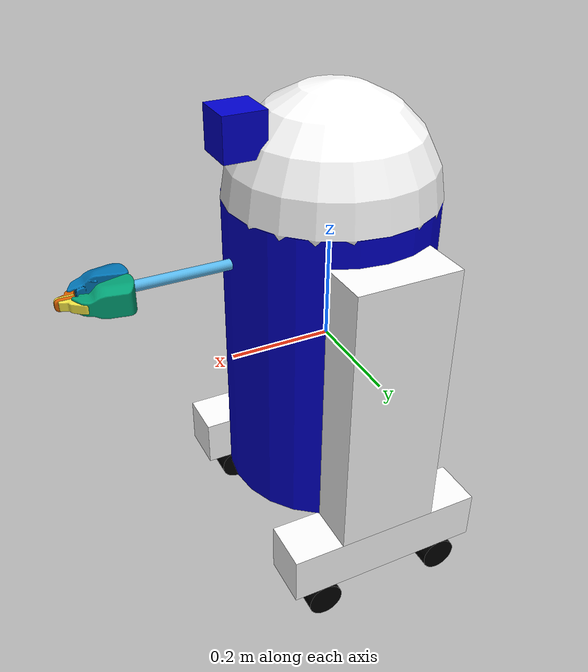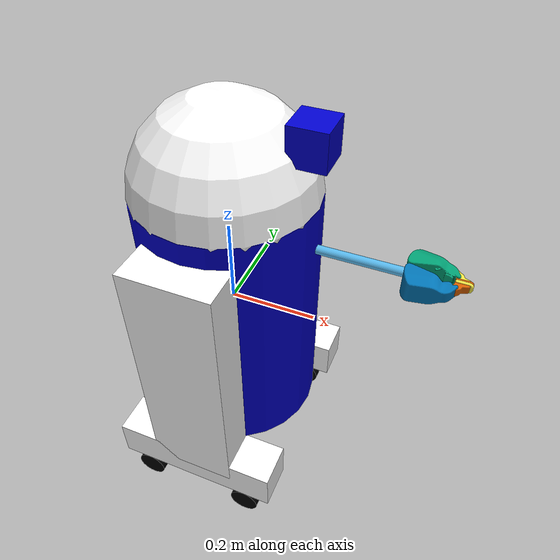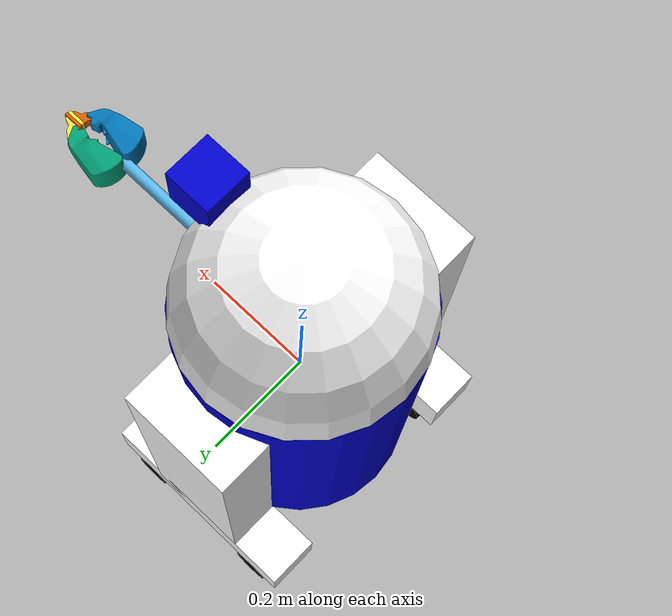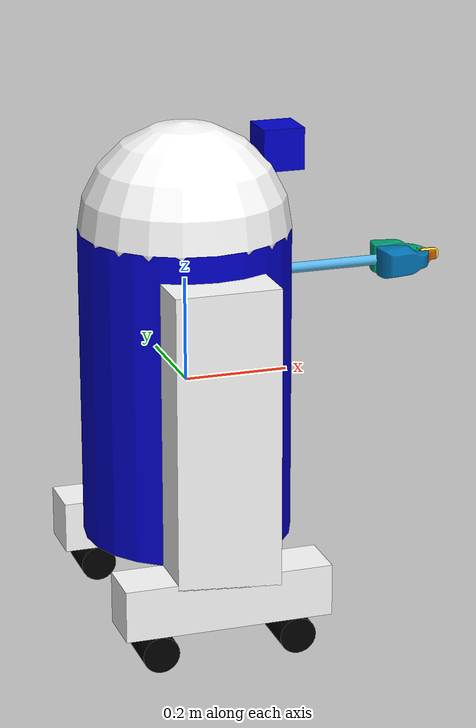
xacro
<?xml version="1.0"?>
<robot xmlns:xacro="http://www.ros.org/wiki/xacro" name="visual">

  <xacro:property name="width" value="0.2" />
  <xacro:property name="bodylen" value="0.6" />
  <xacro:property name="leglen" value="0.6" />
  <xacro:property name="wheeldiam" value="0.07" />

  <xacro:macro name="material" params="name color">
    <material name="${name}">
      <color rgba="${color}"/>
    </material>
  </xacro:macro>

  <xacro:material name="blue" color="0 0 0.8 1"/>
  <xacro:material name="black" color="0 0 0 1"/>
  <xacro:material name="white" color="1 1 1 1"/>

  <xacro:macro name="leg" params="prefix reflect">
    <link name="${prefix}_leg">
      <visual>
        <geometry>
          <box size="${leglen} 0.1 0.2"/>
        </geometry>
        <origin xyz="0 0 -${leglen/2}" rpy="0 ${pi/2} 0"/>
        <material name="white"/>
      </visual>
      <collision>
        <geometry>
          <box size="${leglen} 0.1 0.2"/>
        </geometry>
        <origin xyz="0 0 -${leglen/2}" rpy="0 ${pi/2} 0"/>
      </collision>
      <xacro:default_inertial mass="10"/>
    </link>

    <joint name="base_to_${prefix}_leg" type="fixed">
      <parent link="base_link"/>
      <child link="${prefix}_leg"/>
      <origin xyz="0 ${reflect*(width+.02)} 0.25" />
    </joint>

    <link name="${prefix}_base">
      <visual>
        <geometry>
          <box size="0.4 0.1 0.1"/>
        </geometry>
        <material name="white"/>
      </visual>
    </link>

    <joint name="${prefix}_base_joint" type="fixed">
      <parent link="${prefix}_leg"/>
      <child link="${prefix}_base"/>
      <origin xyz="0 0 -0.6"/>
    </joint>

    <link name="${prefix}_front_wheel">
      <visual>
        <origin rpy="1.57075 0 0" xyz="0 0 0"/>
        <geometry>
          <cylinder length="0.1" radius="${wheeldiam/2}"/>
        </geometry>
        <material name="black"/>
      </visual>
    </link>
    <joint name="${prefix}_front_wheel_joint" type="fixed">
      <parent link="${prefix}_base"/>
      <child link="${prefix}_front_wheel"/>
      <origin rpy="0 0 0" xyz="0.133333333333 0 -0.085"/>
    </joint>

    <link name="${prefix}_back_wheel">
      <visual>
        <origin rpy="1.57075 0 0" xyz="0 0 0"/>
        <geometry>
          <cylinder length="0.1" radius="${wheeldiam/2}"/>
        </geometry>
        <material name="black"/>
      </visual>
    </link>
    <joint name="${prefix}_back_wheel_joint" type="fixed">
      <parent link="${prefix}_base"/>
      <child link="${prefix}_back_wheel"/>
      <origin rpy="0 0 0" xyz="-0.133333333333 0 -0.085"/>
    </joint>
  </xacro:macro>

  <xacro:leg prefix="right" reflect="1" />
  <xacro:leg prefix="left" reflect="-1" />

  <link name="base_link">
    <visual>
      <geometry>
        <cylinder radius="${width}" length="${bodylen}"/>
      </geometry>
      <material name="blue"/>
    </visual>
    <collision>
      <geometry>
        <cylinder radius="${width}" length="${bodylen}"/>
      </geometry>
    </collision>
    <inertial>
      <mass value="10"/>
      <inertia ixx="1e-3" ixy="0.0" ixz="0.0" iyy="1e-3" iyz="0.0" izz="1e-3"/>
    </inertial>
  </link>

  <joint name="gripper_extension" type="prismatic">
    <parent link="base_link"/>
    <child link="gripper_pole"/>
    <limit effort="1000.0" lower="-0.38" upper="0" velocity="0.5"/>
    <origin rpy="0 0 0" xyz="0.19 0 0.2"/>
  </joint>

  <link name="gripper_pole">
    <visual>
      <geometry>
        <cylinder length="0.2" radius="0.01"/>
      </geometry>
      <origin rpy="0 1.57075 0 " xyz="0.1 0 0"/>
    </visual>
  </link>

  <joint name="left_gripper_joint" type="revolute">
    <axis xyz="0 0 1"/>
    <limit effort="1000.0" lower="0.0" upper="0.548" velocity="0.5"/>
    <origin rpy="0 0 0" xyz="0.2 0.01 0"/>
    <parent link="gripper_pole"/>
    <child link="left_gripper"/>
  </joint>

  <link name="left_gripper">
    <visual>
      <origin rpy="0.0 0 0" xyz="0 0 0"/>
      <geometry>
        <mesh filename="package://urdf_tutorial/meshes/l_finger.dae"/>
      </geometry>
    </visual>
  </link>

  <joint name="left_tip_joint" type="fixed">
    <parent link="left_gripper"/>
    <child link="left_tip"/>
  </joint>

  <link name="left_tip">
    <visual>
      <origin rpy="0.0 0 0" xyz="0.09137 0.00495 0"/>
      <geometry>
        <mesh filename="package://urdf_tutorial/meshes/l_finger_tip.dae"/>
      </geometry>
    </visual>
  </link>
  <joint name="right_gripper_joint" type="fixed">
    <origin rpy="0 0 0" xyz="0.2 -0.01 0"/>
    <parent link="gripper_pole"/>
    <child link="right_gripper"/>
  </joint>

  <link name="right_gripper">
    <visual>
      <origin rpy="-3.1415 0 0" xyz="0 0 0"/>
      <geometry>
        <mesh filename="package://urdf_tutorial/meshes/l_finger.dae"/>
      </geometry>
    </visual>
  </link>

  <joint name="right_tip_joint" type="fixed">
    <parent link="right_gripper"/>
    <child link="right_tip"/>
  </joint>

  <link name="right_tip">
    <visual>
      <origin rpy="-3.1415 0 0" xyz="0.09137 0.00495 0"/>
      <geometry>
        <mesh filename="package://urdf_tutorial/meshes/l_finger_tip.dae"/>
      </geometry>
    </visual>
  </link>

  <link name="head">
    <visual>
      <geometry>
        <sphere radius="0.2"/>
      </geometry>
      <material name="white"/>
    </visual>
  </link>

  <joint name="head_swivel" type="continuous">
    <parent link="base_link"/>
    <child link="head"/>
    <axis xyz="0 0 1"/>
    <origin xyz="0 0 0.3"/>
  </joint>

  <link name="box">
    <visual>
      <geometry>
        <box size="0.08 0.08 0.08"/>
      </geometry>
      <material name="blue"/>
    </visual>
  </link>

  <joint name="tobox" type="fixed">
    <parent link="head"/>
    <child link="box"/>
    <origin xyz="0.1814 0 0.1414"/>
  </joint>

</robot>
